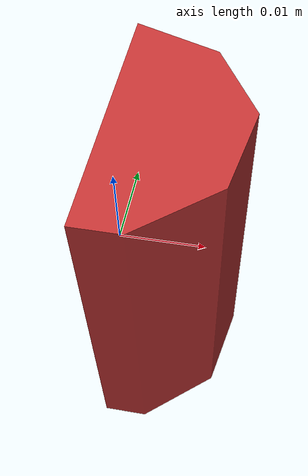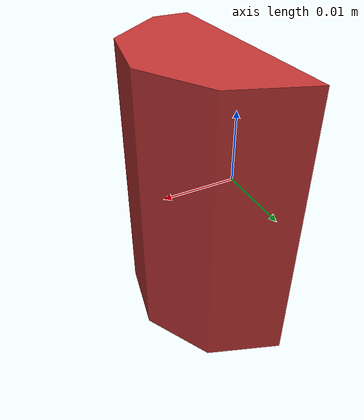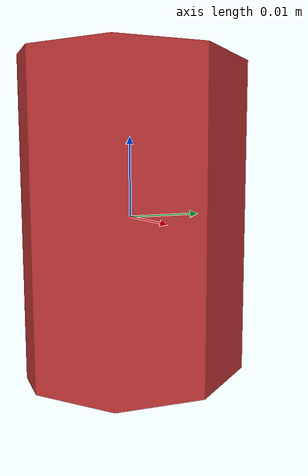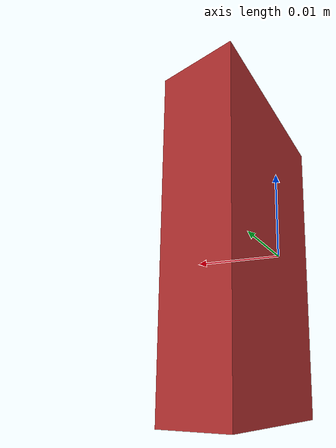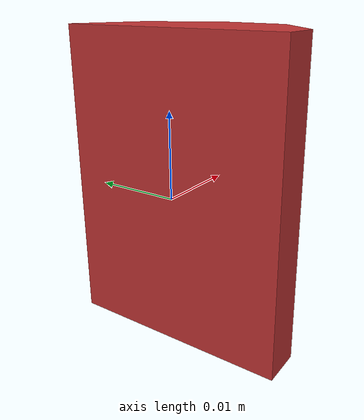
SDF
<?xml version="1.0" ?>
<sdf version='1.6'>
  <model name='cyl_4'>
    <link name='cyl_4'>
      <pose frame=''>0 0 0 0 0 0</pose>
      <inertial>
        <pose frame=''>0.005835 -0.000000 0.000000 0. 0. 0.</pose>
        <mass>1.10011992177e-05</mass>
        <inertia>
          <ixx>1.78104575917e-09</ixx>
          <ixy>-8.79775087377e-13</ixy>
          <ixz>-6.89317177128e-27</ixz>
          <iyy>1.40646980124e-09</iyy>
          <iyz>1.37863435426e-26</iyz>
          <izz>6.65672040443e-10</izz>
        </inertia>
      </inertial>
      <visual>
        <pose frame=''>0 0 0 0 0 0</pose>
        <geometry>
          <mesh>
            <scale>1 1 1</scale>
            <uri>models/half_carrot_models/meshes/cyl_4.obj</uri>
          </mesh>
        </geometry>
        <material>
          <ambient>0.75 0.2 0.2 1.0</ambient>
          <diffuse>0.75 0.2 0.2 1.0</diffuse>
          <specular>0.01 0.01 0.01 1</specular>
          <emissive>0 0 0 1</emissive>
          <shader type='vertex'>
            <normal_map>__default__</normal_map>
          </shader>
        </material>
      </visual>
      <collision>
        <pose frame=''>0 0 0 0 0 0</pose>
        <geometry>
          <mesh>
            <scale>1 1 1</scale>
            <uri>models/half_carrot_models/meshes/cyl_4.obj</uri>
          </mesh>
        </geometry>
      </collision>
      <gravity>1</gravity>
      <self_collide>0</self_collide>
    </link>
  </model>
</sdf>
